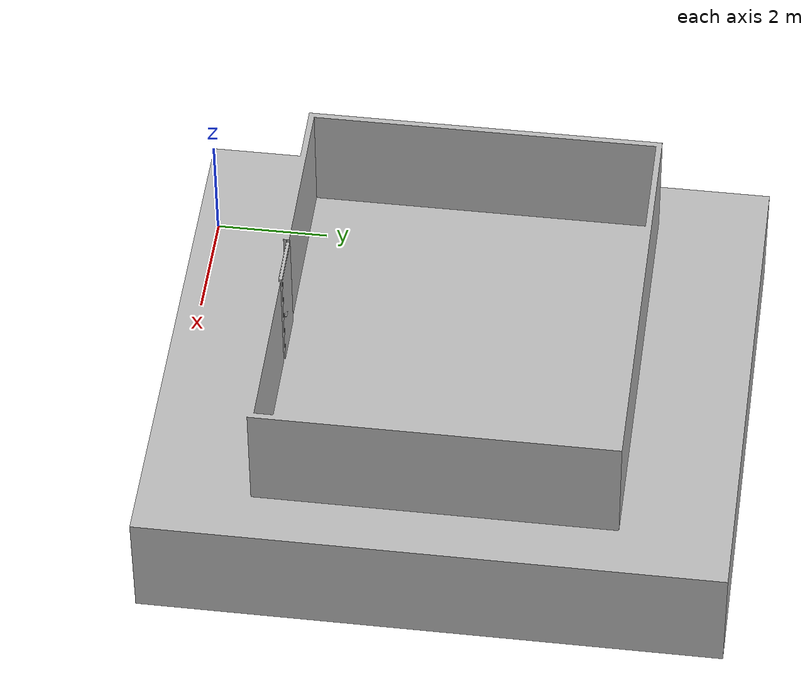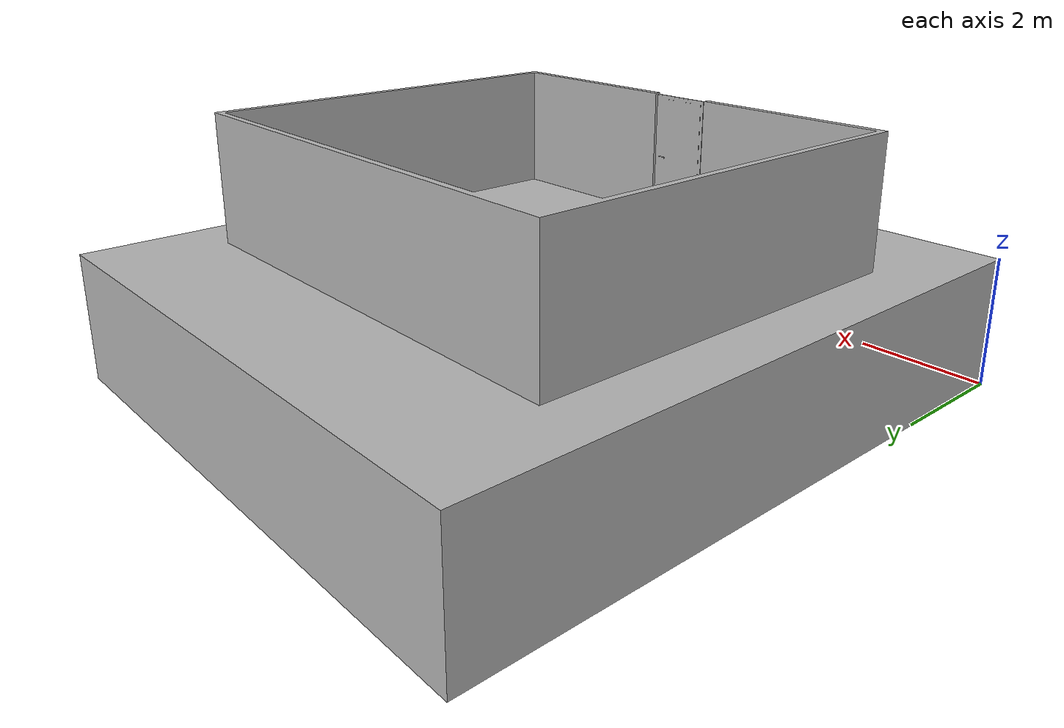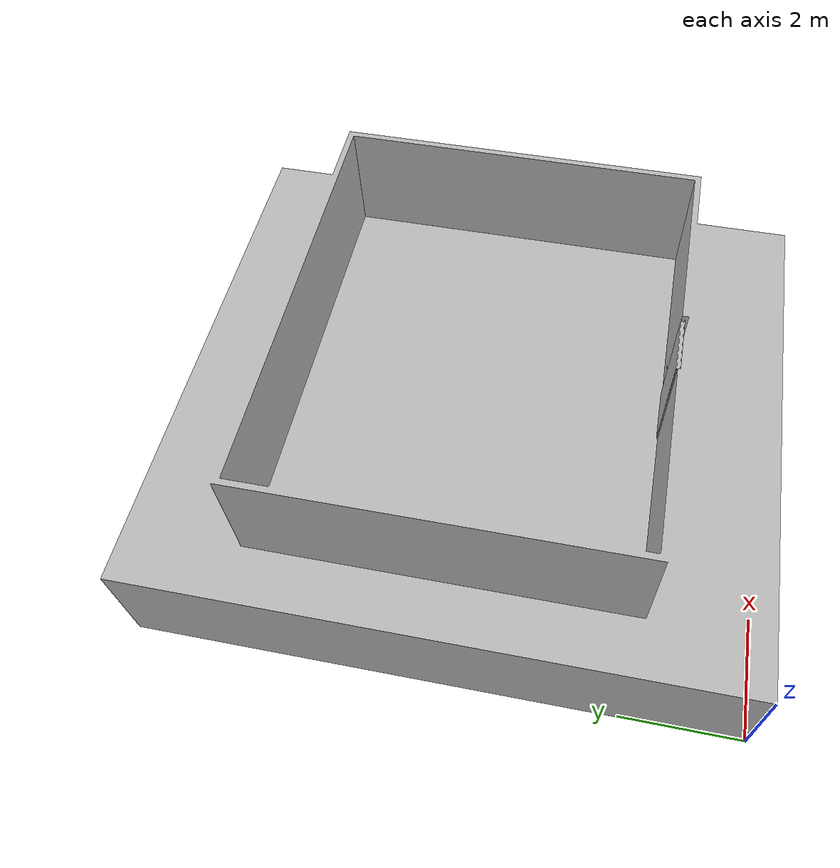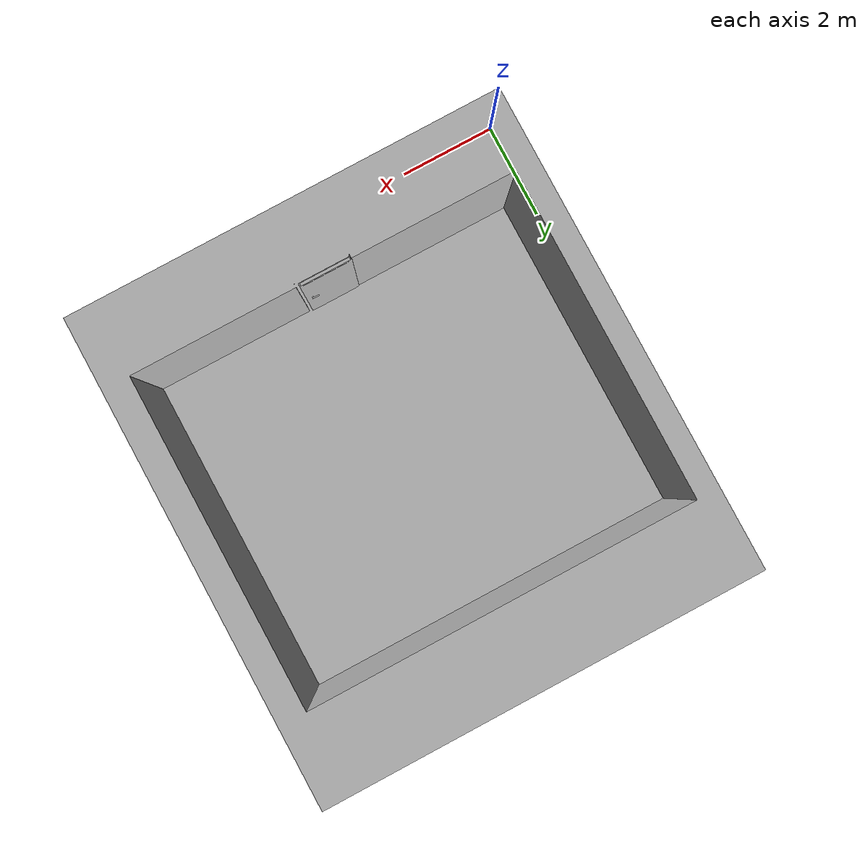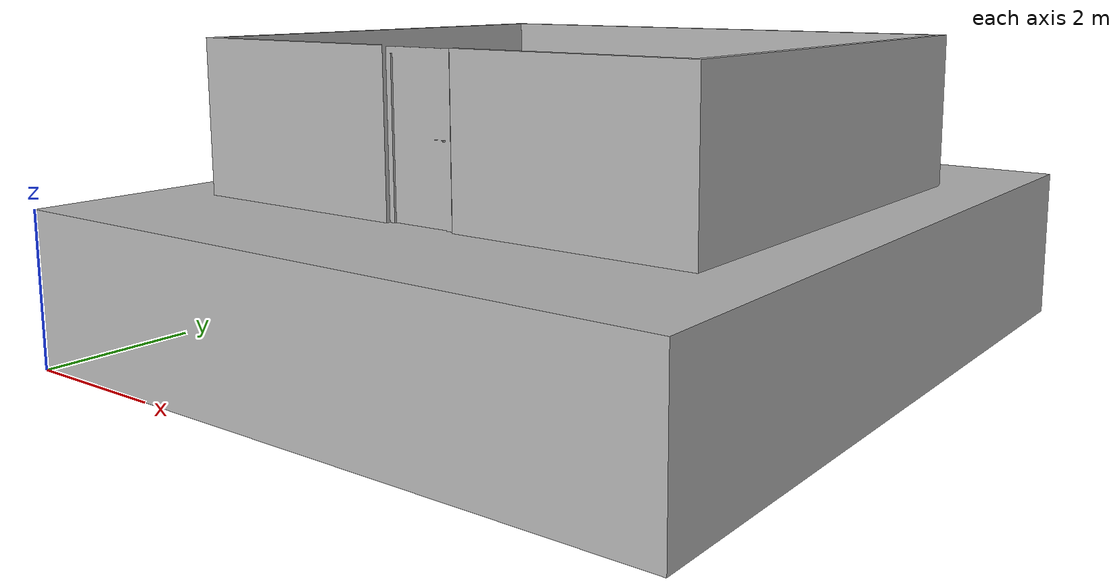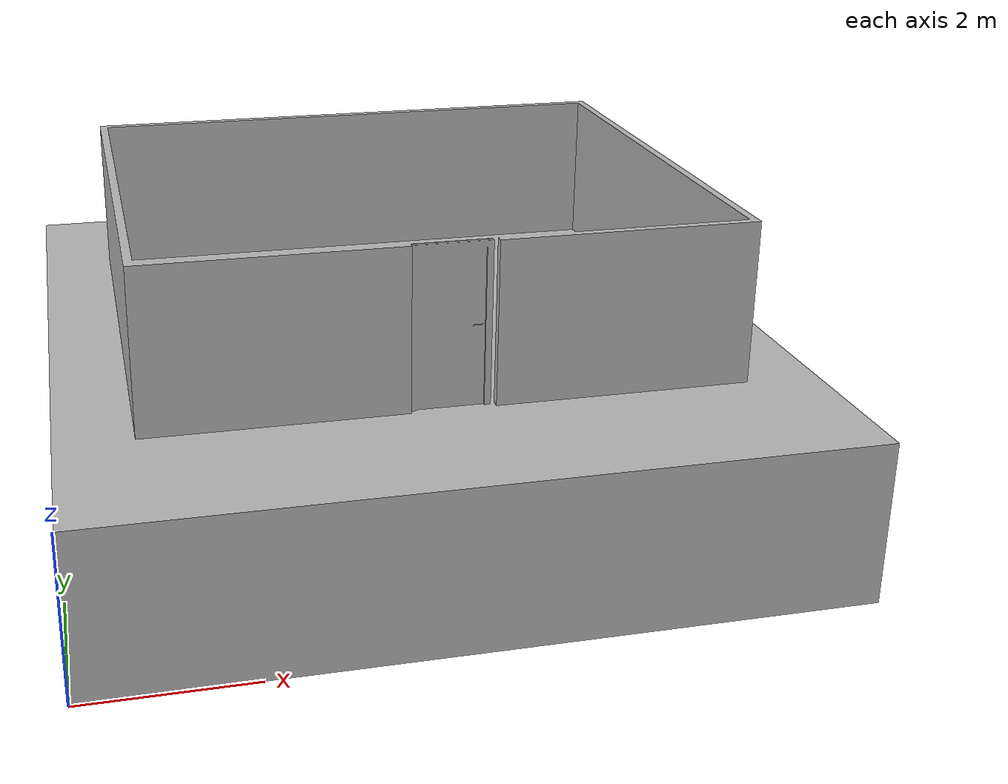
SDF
<sdf version="1.6">
  <model name="escenarioprueba">
    <static>false</static>

    <!-- 🔳 Pared con masa, sin gravedad -->
    <link name="pared_link">
      <pose>0 0 0 0 0 0</pose>
      <gravity>false</gravity>
      <self_collide>false</self_collide>
      <visual name="pared_visual">
        <geometry>
          <mesh>
            <uri>model://escenarioprueba/meshes/paredes.dae</uri>
          </mesh>
        </geometry>
      </visual>
      <collision name="pared_collision">
        <geometry>
          <mesh>
            <uri>model://escenarioprueba/meshes/paredes.dae</uri>
          </mesh>
        </geometry>
      </collision>
      <inertial>
        <mass>100.0</mass>
        <inertia>
          <ixx>10.0</ixx>
          <iyy>10.0</iyy>
          <izz>10.0</izz>
          <ixy>0.0</ixy>
          <ixz>0.0</ixz>
          <iyz>0.0</iyz>
        </inertia>
      </inertial>
    </link>

    <!-- Puerta móvil -->
    <link name="door_link">
      <pose>4 2.0203 1.975 0 0 0</pose>
      <visual name="door_visual">
        <geometry>
          <mesh>
            <uri>model://escenarioprueba/meshes/puerta.dae</uri>
          </mesh>
        </geometry>
      </visual>
      <collision name="door_collision">
        <geometry>
          <mesh>
            <uri>model://escenarioprueba/meshes/puerta.dae</uri>
          </mesh>
        </geometry>
      </collision>
      <inertial>
        <mass>5.0</mass>
        <inertia>
          <ixx>0.5</ixx>
          <iyy>0.5</iyy>
          <izz>0.5</izz>
          <ixy>0.0</ixy>
          <ixz>0.0</ixz>
          <iyz>0.0</iyz>
        </inertia>
      </inertial>
    </link>

    <!-- 🔗 Joint puerta-pared -->
    <joint name="door_joint" type="revolute">
      <parent>pared_link</parent>
      <child>door_link</child>
      <pose>0 0 0 0 0 0</pose>
      <axis>
        <xyz>0 0 1</xyz>
        <limit>
          <lower>-1.57</lower>
          <upper>1.57</upper>
          <effort>10</effort>
          <velocity>1.0</velocity>
        </limit>
        <dynamics>
          <damping>0.001</damping>
          <friction>0.05</friction>
        </dynamics>
      </axis>
    </joint>
  </model>
</sdf>
